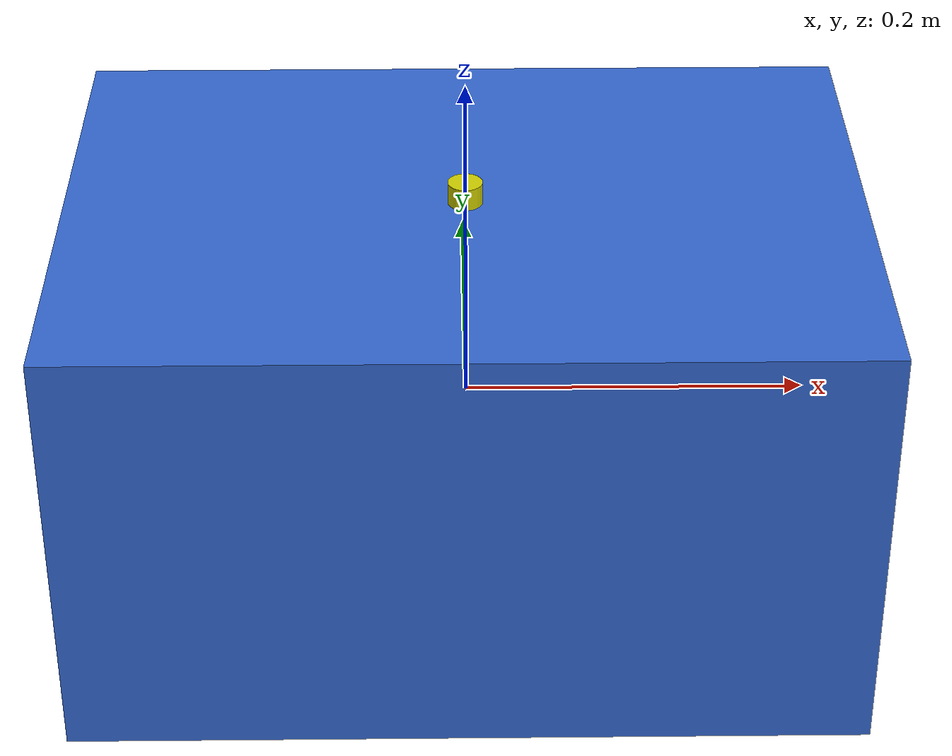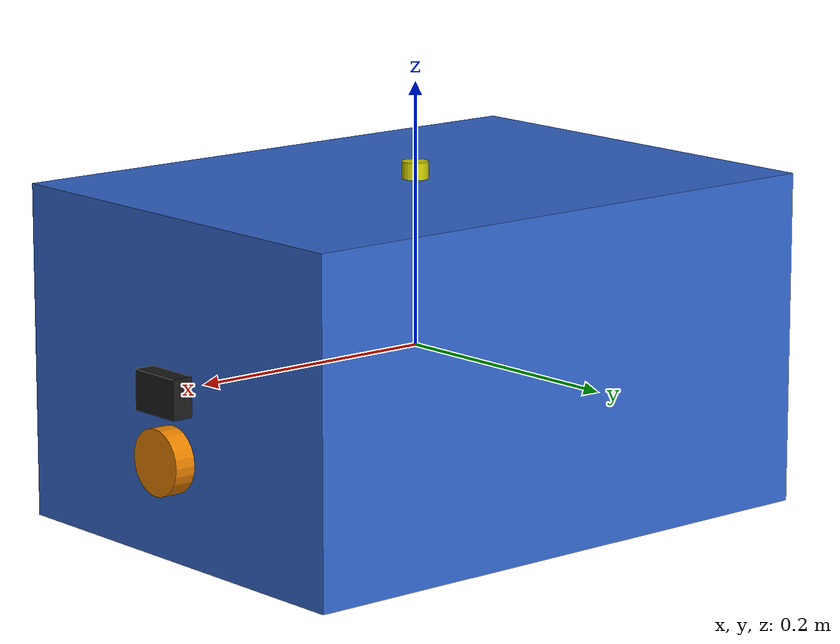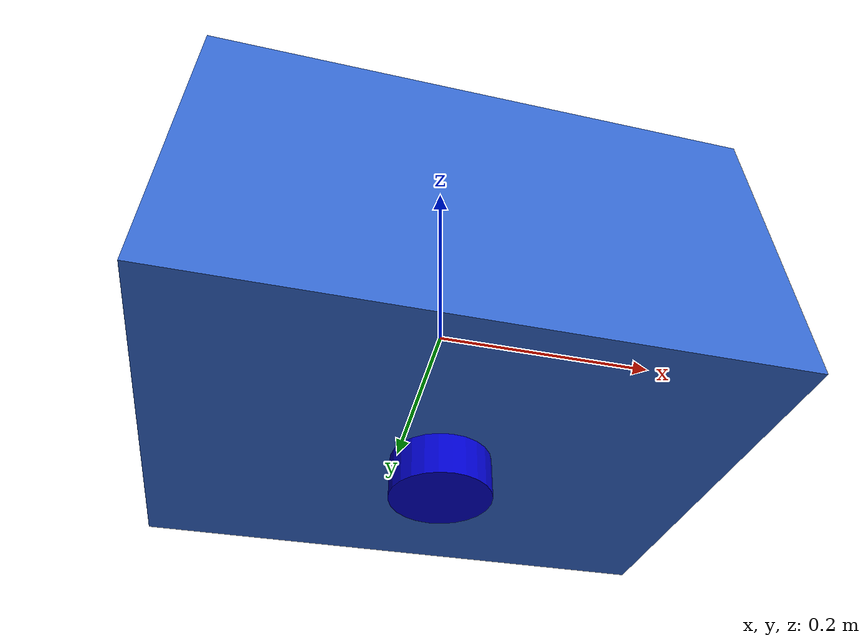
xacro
<?xml version="1.0"?>
<robot name="reef_drone" xmlns:xacro="http://www.ros.org/wiki/xacro">

  <!-- Include macros -->
  <xacro:include filename="$(find reef_drone_description)/urdf/thruster_macro.urdf.xacro"/>
  <xacro:include filename="$(find reef_drone_description)/urdf/sensor_mounts.urdf.xacro"/>

  <!-- Robot dimensions -->
  <xacro:property name="body_length" value="0.457"/>
  <xacro:property name="body_width" value="0.338"/>
  <xacro:property name="body_height" value="0.254"/>
  <xacro:property name="body_mass" value="11.5"/>

  <!-- Thruster positions -->
  <xacro:property name="thruster_x" value="0.12"/>
  <xacro:property name="thruster_y" value="0.12"/>
  <xacro:property name="vert_thruster_y" value="0.10"/>
  <xacro:property name="vert_thruster_z" value="0.05"/>

  <!-- Thruster angles (45 degrees in radians) -->
  <xacro:property name="thruster_angle" value="${pi/4}"/>

  <link name="base_link">
    <visual>
      <geometry>
        <box size="${body_length} ${body_width} ${body_height}"/>
      </geometry>
      <material name="reef_drone_blue">
        <color rgba="0.2 0.4 0.8 1.0"/>
      </material>
    </visual>

    <collision>
      <geometry>
        <box size="${body_length} ${body_width} ${body_height}"/>
      </geometry>
    </collision>

    <inertial>
      <mass value="${body_mass}"/>
      <origin xyz="0 0 0" rpy="0 0 0"/>
      <inertia
        ixx="${body_mass * (body_height*body_height + body_width*body_width) / 12}"
        ixy="0" ixz="0"
        iyy="${body_mass * (body_height*body_height + body_length*body_length) / 12}"
        iyz="0"
        izz="${body_mass * (body_width*body_width + body_length*body_length) / 12}"/>
    </inertial>
  </link>

  <gazebo reference="base_link">
    <material>Gazebo/Blue</material>
  </gazebo>

  <!-- Thruster 1: Front-Left, pointing forward-right -->
  <xacro:thruster
    name="thruster_1"
    parent="base_link"
    xyz="${thruster_x} ${-thruster_y} 0"
    rpy="0 0 ${thruster_angle}"/>

  <!-- Thruster 2: Front-Right, pointing forward-left -->
  <xacro:thruster
    name="thruster_2"
    parent="base_link"
    xyz="${thruster_x} ${thruster_y} 0"
    rpy="0 0 ${-thruster_angle}"/>

  <!-- Thruster 3: Rear-Left, pointing forward-left -->
  <xacro:thruster
    name="thruster_3"
    parent="base_link"
    xyz="${-thruster_x} ${-thruster_y} 0"
    rpy="0 0 ${-thruster_angle}"/>

  <!-- Thruster 4: Rear-Right, pointing forward-right -->
  <xacro:thruster
    name="thruster_4"
    parent="base_link"
    xyz="${-thruster_x} ${thruster_y} 0"
    rpy="0 0 ${thruster_angle}"/>

  <!-- Thruster 5: Vertical-Left -->
  <xacro:thruster
    name="thruster_5"
    parent="base_link"
    xyz="0 ${-vert_thruster_y} ${vert_thruster_z}"
    rpy="0 ${-pi/2} 0"/>

  <!-- Thruster 6: Vertical-Right -->
  <xacro:thruster
    name="thruster_6"
    parent="base_link"
    xyz="0 ${vert_thruster_y} ${vert_thruster_z}"
    rpy="0 ${-pi/2} 0"/>

  <!--
    SENSORS

    All sensors mounted to base_link.
    See sensor_mounts.urdf.xacro for detailed sensor descriptions.
  -->

  <!-- IMU at center of mass -->
  <xacro:imu_sensor parent="base_link"/>

  <!-- DVL bottom-facing for velocity measurement -->
  <xacro:dvl_sensor parent="base_link"/>

  <!-- Depth sensor on top -->
  <xacro:depth_sensor parent="base_link"/>

  <!-- Forward-looking camera -->
  <xacro:camera_sensor parent="base_link"/>

  <!-- Forward-looking sonar -->
  <xacro:sonar_sensor parent="base_link"/>

  <!--
    BUOYANCY REFERENCE POINT

    This is a virtual link marking the Center of Buoyancy (CB).
    Used by Gazebo buoyancy plugin.

    CB is above CM by 0.02m for passive roll/pitch stability.
  -->
  <link name="buoyancy_link"/>
  <joint name="buoyancy_joint" type="fixed">
    <parent link="base_link"/>
    <child link="buoyancy_link"/>
    <origin xyz="0 0 0.02" rpy="0 0 0"/>
  </joint>

</robot>

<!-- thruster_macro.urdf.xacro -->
<robot xmlns:xacro="http://www.ros.org/wiki/xacro">

  <!-- Thruster properties -->
  <xacro:property name="thruster_radius" value="0.02"/>
  <xacro:property name="thruster_length" value="0.05"/>
  <xacro:property name="thruster_mass" value="0.3"/>

  <xacro:macro name="thruster" params="name parent xyz rpy">

    <!-- Thruster link (the physical propeller housing) -->
    <link name="${name}_link">
      <visual>
        <origin xyz="0 0 0" rpy="0 ${pi/2} 0"/>
        <geometry>
          <cylinder radius="${thruster_radius}" length="${thruster_length}"/>
        </geometry>
        <material name="thruster_gray">
          <color rgba="0.3 0.3 0.3 1.0"/>
        </material>
      </visual>

      <collision>
        <origin xyz="0 0 0" rpy="0 ${pi/2} 0"/>
        <geometry>
          <cylinder radius="${thruster_radius}" length="${thruster_length}"/>
        </geometry>
      </collision>

      <inertial>
        <mass value="${thruster_mass}"/>
        <!-- Cylinder inertia: Ixx=Iyy=m(3r²+h²)/12, Izz=mr²/2 -->
        <inertia
          ixx="${thruster_mass * (3*thruster_radius*thruster_radius + thruster_length*thruster_length) / 12}"
          ixy="0" ixz="0"
          iyy="${thruster_mass * (3*thruster_radius*thruster_radius + thruster_length*thruster_length) / 12}"
          iyz="0"
          izz="${thruster_mass * thruster_radius * thruster_radius / 2}"/>
      </inertial>
    </link>

    <!-- Fixed joint connecting thruster to parent -->
    <joint name="${name}_joint" type="fixed">
      <parent link="${parent}"/>
      <child link="${name}_link"/>
      <origin xyz="${xyz}" rpy="${rpy}"/>
    </joint>

    <!-- Gazebo visual properties -->
    <gazebo reference="${name}_link">
      <material>Gazebo/DarkGrey</material>
    </gazebo>

  </xacro:macro>

</robot>

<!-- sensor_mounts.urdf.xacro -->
<robot xmlns:xacro="http://www.ros.org/wiki/xacro">

  <!-- Sensor dimensions -->
  <xacro:property name="sensor_mass" value="0.1"/>
  <xacro:property name="camera_size" value="0.03"/>
  <xacro:property name="dvl_radius" value="0.04"/>
  <xacro:property name="dvl_height" value="0.06"/>

  <xacro:macro name="imu_sensor" params="parent">
    <link name="imu_link">
      <visual>
        <geometry>
          <box size="0.02 0.02 0.01"/>
        </geometry>
        <material name="imu_green">
          <color rgba="0.0 0.8 0.0 1.0"/>
        </material>
      </visual>
      <inertial>
        <mass value="0.05"/>
        <inertia ixx="1e-6" ixy="0" ixz="0" iyy="1e-6" iyz="0" izz="1e-6"/>
      </inertial>
    </link>

    <joint name="imu_joint" type="fixed">
      <parent link="${parent}"/>
      <child link="imu_link"/>
      <!-- IMU at center of mass for best orientation estimate -->
      <origin xyz="0 0 0" rpy="0 0 0"/>
    </joint>
  </xacro:macro>

  <xacro:macro name="dvl_sensor" params="parent">
    <link name="dvl_link">
      <visual>
        <geometry>
          <cylinder radius="${dvl_radius}" length="${dvl_height}"/>
        </geometry>
        <material name="dvl_blue">
          <color rgba="0.0 0.0 0.8 1.0"/>
        </material>
      </visual>
      <collision>
        <geometry>
          <cylinder radius="${dvl_radius}" length="${dvl_height}"/>
        </geometry>
      </collision>
      <inertial>
        <mass value="0.5"/>
        <inertia ixx="5e-4" ixy="0" ixz="0" iyy="5e-4" iyz="0" izz="4e-4"/>
      </inertial>
    </link>

    <joint name="dvl_joint" type="fixed">
      <parent link="${parent}"/>
      <child link="dvl_link"/>
      <!-- DVL mounted bottom-facing for bottom-lock -->
      <origin xyz="0 0 -0.13" rpy="0 0 0"/>
    </joint>

    <gazebo reference="dvl_link">
      <material>Gazebo/Blue</material>
    </gazebo>
  </xacro:macro>

  <xacro:macro name="depth_sensor" params="parent">
    <link name="depth_sensor_link">
      <visual>
        <geometry>
          <cylinder radius="0.01" length="0.02"/>
        </geometry>
        <material name="depth_yellow">
          <color rgba="0.8 0.8 0.0 1.0"/>
        </material>
      </visual>
      <inertial>
        <mass value="0.02"/>
        <inertia ixx="1e-7" ixy="0" ixz="0" iyy="1e-7" iyz="0" izz="1e-7"/>
      </inertial>
    </link>

    <joint name="depth_sensor_joint" type="fixed">
      <parent link="${parent}"/>
      <child link="depth_sensor_link"/>
      <!-- Mounted on top of vehicle for best access to water column -->
      <origin xyz="0 0 0.13" rpy="0 0 0"/>
    </joint>
  </xacro:macro>

  <xacro:macro name="camera_sensor" params="parent">
    <link name="camera_link">
      <visual>
        <geometry>
          <box size="${camera_size} ${camera_size*1.5} ${camera_size}"/>
        </geometry>
        <material name="camera_black">
          <color rgba="0.1 0.1 0.1 1.0"/>
        </material>
      </visual>
      <collision>
        <geometry>
          <box size="${camera_size} ${camera_size*1.5} ${camera_size}"/>
        </geometry>
      </collision>
      <inertial>
        <mass value="0.2"/>
        <inertia ixx="1e-4" ixy="0" ixz="0" iyy="1e-4" iyz="0" izz="1e-4"/>
      </inertial>
    </link>

    <joint name="camera_joint" type="fixed">
      <parent link="${parent}"/>
      <child link="camera_link"/>
      <!-- Forward-facing camera -->
      <origin xyz="0.23 0 0" rpy="0 0 0"/>
    </joint>

    <!-- Camera optical frame (Z forward, X right, Y down - ROS convention) -->
    <link name="camera_optical_link"/>
    <joint name="camera_optical_joint" type="fixed">
      <parent link="camera_link"/>
      <child link="camera_optical_link"/>
      <origin xyz="0 0 0" rpy="${-pi/2} 0 ${-pi/2}"/>
    </joint>

    <gazebo reference="camera_link">
      <material>Gazebo/Black</material>
    </gazebo>
  </xacro:macro>

  <xacro:macro name="sonar_sensor" params="parent">
    <link name="sonar_link">
      <visual>
        <geometry>
          <cylinder radius="0.025" length="0.03"/>
        </geometry>
        <material name="sonar_orange">
          <color rgba="0.9 0.5 0.0 1.0"/>
        </material>
      </visual>
      <inertial>
        <mass value="0.1"/>
        <inertia ixx="1e-5" ixy="0" ixz="0" iyy="1e-5" iyz="0" izz="1e-5"/>
      </inertial>
    </link>

    <joint name="sonar_joint" type="fixed">
      <parent link="${parent}"/>
      <child link="sonar_link"/>
      <!-- Forward-facing, below camera -->
      <origin xyz="0.23 0 -0.05" rpy="0 ${pi/2} 0"/>
    </joint>

    <gazebo reference="sonar_link">
      <material>Gazebo/Orange</material>
    </gazebo>
  </xacro:macro>

</robot>
